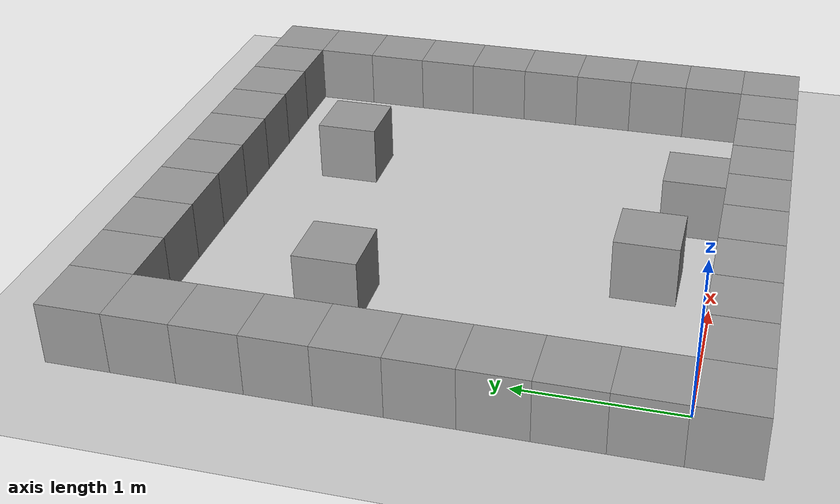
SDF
<?xml version="1.0" encoding="utf-8"?>
<sdf version="1.4">
	<world name="default">
		<include>
			<uri>model://ground_plane</uri>
		</include>
		<include>
			<uri>model://sun</uri>
		</include>
		<model name="unit_box_id_0">
			<static>true</static>
			<pose>0.6000000000000001 2.2 0.2 0 0 0</pose>
			<link name="link">
				<inertial>
					<mass>1</mass>
					<inertia>
						<ixx>0.166667</ixx>
						<ixy>0</ixy>
						<ixz>0</ixz>
						<iyy>0.166667</iyy>
						<iyz>0</iyz>
						<izz>0.166667</izz>
					</inertia>
					<pose>0.6000000000000001 2.2 0.2 0 0 0</pose>
				</inertial>
				<collision name="collision">
					<geometry>
						<box>
							<size>0.4 0.4 0.4</size>
						</box>
					</geometry>
					<max_contacts>10</max_contacts>
					<surface>
						<contact>
							<ode></ode>
						</contact>
						<bounce></bounce>
						<friction>
							<torsional>
								<ode></ode>
							</torsional>
							<ode></ode>
						</friction>
					</surface>
				</collision>
				<visual name="visual">
					<geometry>
						<box>
							<size>0.4 0.4 0.4</size>
						</box>
					</geometry>
					<material>
						<script>
							<name>Gazebo/Grey</name>
							<uri>file://media/materials/scripts/gazebo.material</uri>
						</script>
					</material>
				</visual>
				<self_collide>0</self_collide>
				<enable_wind>0</enable_wind>
				<kinematic>0</kinematic>
			</link>
		</model>
		<model name="unit_box_id_1">
			<static>true</static>
			<pose>1.2 0.4 0.2 0 0 0</pose>
			<link name="link">
				<inertial>
					<mass>1</mass>
					<inertia>
						<ixx>0.166667</ixx>
						<ixy>0</ixy>
						<ixz>0</ixz>
						<iyy>0.166667</iyy>
						<iyz>0</iyz>
						<izz>0.166667</izz>
					</inertia>
					<pose>1.2 0.4 0.2 0 0 0</pose>
				</inertial>
				<collision name="collision">
					<geometry>
						<box>
							<size>0.4 0.4 0.4</size>
						</box>
					</geometry>
					<max_contacts>10</max_contacts>
					<surface>
						<contact>
							<ode></ode>
						</contact>
						<bounce></bounce>
						<friction>
							<torsional>
								<ode></ode>
							</torsional>
							<ode></ode>
						</friction>
					</surface>
				</collision>
				<visual name="visual">
					<geometry>
						<box>
							<size>0.4 0.4 0.4</size>
						</box>
					</geometry>
					<material>
						<script>
							<name>Gazebo/Grey</name>
							<uri>file://media/materials/scripts/gazebo.material</uri>
						</script>
					</material>
				</visual>
				<self_collide>0</self_collide>
				<enable_wind>0</enable_wind>
				<kinematic>0</kinematic>
			</link>
		</model>
		<model name="unit_box_id_2">
			<static>true</static>
			<pose>2.0 0.2 0.2 0 0 0</pose>
			<link name="link">
				<inertial>
					<mass>1</mass>
					<inertia>
						<ixx>0.166667</ixx>
						<ixy>0</ixy>
						<ixz>0</ixz>
						<iyy>0.166667</iyy>
						<iyz>0</iyz>
						<izz>0.166667</izz>
					</inertia>
					<pose>2.0 0.2 0.2 0 0 0</pose>
				</inertial>
				<collision name="collision">
					<geometry>
						<box>
							<size>0.4 0.4 0.4</size>
						</box>
					</geometry>
					<max_contacts>10</max_contacts>
					<surface>
						<contact>
							<ode></ode>
						</contact>
						<bounce></bounce>
						<friction>
							<torsional>
								<ode></ode>
							</torsional>
							<ode></ode>
						</friction>
					</surface>
				</collision>
				<visual name="visual">
					<geometry>
						<box>
							<size>0.4 0.4 0.4</size>
						</box>
					</geometry>
					<material>
						<script>
							<name>Gazebo/Grey</name>
							<uri>file://media/materials/scripts/gazebo.material</uri>
						</script>
					</material>
				</visual>
				<self_collide>0</self_collide>
				<enable_wind>0</enable_wind>
				<kinematic>0</kinematic>
			</link>
		</model>
		<model name="unit_box_id_3">
			<static>true</static>
			<pose>2.2 2.6000000000000005 0.2 0 0 0</pose>
			<link name="link">
				<inertial>
					<mass>1</mass>
					<inertia>
						<ixx>0.166667</ixx>
						<ixy>0</ixy>
						<ixz>0</ixz>
						<iyy>0.166667</iyy>
						<iyz>0</iyz>
						<izz>0.166667</izz>
					</inertia>
					<pose>2.2 2.6000000000000005 0.2 0 0 0</pose>
				</inertial>
				<collision name="collision">
					<geometry>
						<box>
							<size>0.4 0.4 0.4</size>
						</box>
					</geometry>
					<max_contacts>10</max_contacts>
					<surface>
						<contact>
							<ode></ode>
						</contact>
						<bounce></bounce>
						<friction>
							<torsional>
								<ode></ode>
							</torsional>
							<ode></ode>
						</friction>
					</surface>
				</collision>
				<visual name="visual">
					<geometry>
						<box>
							<size>0.4 0.4 0.4</size>
						</box>
					</geometry>
					<material>
						<script>
							<name>Gazebo/Grey</name>
							<uri>file://media/materials/scripts/gazebo.material</uri>
						</script>
					</material>
				</visual>
				<self_collide>0</self_collide>
				<enable_wind>0</enable_wind>
				<kinematic>0</kinematic>
			</link>
		</model>
		<model name="unit_box_id_-0.4_-0.4">
			<static>true</static>
			<pose>-0.2 -0.2 0.2 0 0 0</pose>
			<link name="link">
				<inertial>
					<mass>1</mass>
					<inertia>
						<ixx>0.166667</ixx>
						<ixy>0</ixy>
						<ixz>0</ixz>
						<iyy>0.166667</iyy>
						<iyz>0</iyz>
						<izz>0.166667</izz>
					</inertia>
					<pose>-0.2 -0.2 0.2 0 0 0</pose>
				</inertial>
				<collision name="collision">
					<geometry>
						<box>
							<size>0.4 0.4 0.4</size>
						</box>
					</geometry>
					<max_contacts>10</max_contacts>
					<surface>
						<contact>
							<ode></ode>
						</contact>
						<bounce></bounce>
						<friction>
							<torsional>
								<ode></ode>
							</torsional>
							<ode></ode>
						</friction>
					</surface>
				</collision>
				<visual name="visual">
					<geometry>
						<box>
							<size>0.4 0.4 0.4</size>
						</box>
					</geometry>
					<material>
						<script>
							<name>Gazebo/Grey</name>
							<uri>file://media/materials/scripts/gazebo.material</uri>
						</script>
					</material>
				</visual>
				<self_collide>0</self_collide>
				<enable_wind>0</enable_wind>
				<kinematic>0</kinematic>
			</link>
		</model>
		<model name="unit_box_id_3.2_-0.4">
			<static>true</static>
			<pose>3.4000000000000004 -0.2 0.2 0 0 0</pose>
			<link name="link">
				<inertial>
					<mass>1</mass>
					<inertia>
						<ixx>0.166667</ixx>
						<ixy>0</ixy>
						<ixz>0</ixz>
						<iyy>0.166667</iyy>
						<iyz>0</iyz>
						<izz>0.166667</izz>
					</inertia>
					<pose>3.4000000000000004 -0.2 0.2 0 0 0</pose>
				</inertial>
				<collision name="collision">
					<geometry>
						<box>
							<size>0.4 0.4 0.4</size>
						</box>
					</geometry>
					<max_contacts>10</max_contacts>
					<surface>
						<contact>
							<ode></ode>
						</contact>
						<bounce></bounce>
						<friction>
							<torsional>
								<ode></ode>
							</torsional>
							<ode></ode>
						</friction>
					</surface>
				</collision>
				<visual name="visual">
					<geometry>
						<box>
							<size>0.4 0.4 0.4</size>
						</box>
					</geometry>
					<material>
						<script>
							<name>Gazebo/Grey</name>
							<uri>file://media/materials/scripts/gazebo.material</uri>
						</script>
					</material>
				</visual>
				<self_collide>0</self_collide>
				<enable_wind>0</enable_wind>
				<kinematic>0</kinematic>
			</link>
		</model>
		<model name="unit_box_id_-0.4_0.0">
			<static>true</static>
			<pose>-0.2 0.2 0.2 0 0 0</pose>
			<link name="link">
				<inertial>
					<mass>1</mass>
					<inertia>
						<ixx>0.166667</ixx>
						<ixy>0</ixy>
						<ixz>0</ixz>
						<iyy>0.166667</iyy>
						<iyz>0</iyz>
						<izz>0.166667</izz>
					</inertia>
					<pose>-0.2 0.2 0.2 0 0 0</pose>
				</inertial>
				<collision name="collision">
					<geometry>
						<box>
							<size>0.4 0.4 0.4</size>
						</box>
					</geometry>
					<max_contacts>10</max_contacts>
					<surface>
						<contact>
							<ode></ode>
						</contact>
						<bounce></bounce>
						<friction>
							<torsional>
								<ode></ode>
							</torsional>
							<ode></ode>
						</friction>
					</surface>
				</collision>
				<visual name="visual">
					<geometry>
						<box>
							<size>0.4 0.4 0.4</size>
						</box>
					</geometry>
					<material>
						<script>
							<name>Gazebo/Grey</name>
							<uri>file://media/materials/scripts/gazebo.material</uri>
						</script>
					</material>
				</visual>
				<self_collide>0</self_collide>
				<enable_wind>0</enable_wind>
				<kinematic>0</kinematic>
			</link>
		</model>
		<model name="unit_box_id_3.2_0.0">
			<static>true</static>
			<pose>3.4000000000000004 0.2 0.2 0 0 0</pose>
			<link name="link">
				<inertial>
					<mass>1</mass>
					<inertia>
						<ixx>0.166667</ixx>
						<ixy>0</ixy>
						<ixz>0</ixz>
						<iyy>0.166667</iyy>
						<iyz>0</iyz>
						<izz>0.166667</izz>
					</inertia>
					<pose>3.4000000000000004 0.2 0.2 0 0 0</pose>
				</inertial>
				<collision name="collision">
					<geometry>
						<box>
							<size>0.4 0.4 0.4</size>
						</box>
					</geometry>
					<max_contacts>10</max_contacts>
					<surface>
						<contact>
							<ode></ode>
						</contact>
						<bounce></bounce>
						<friction>
							<torsional>
								<ode></ode>
							</torsional>
							<ode></ode>
						</friction>
					</surface>
				</collision>
				<visual name="visual">
					<geometry>
						<box>
							<size>0.4 0.4 0.4</size>
						</box>
					</geometry>
					<material>
						<script>
							<name>Gazebo/Grey</name>
							<uri>file://media/materials/scripts/gazebo.material</uri>
						</script>
					</material>
				</visual>
				<self_collide>0</self_collide>
				<enable_wind>0</enable_wind>
				<kinematic>0</kinematic>
			</link>
		</model>
		<model name="unit_box_id_-0.4_0.4">
			<static>true</static>
			<pose>-0.2 0.6000000000000001 0.2 0 0 0</pose>
			<link name="link">
				<inertial>
					<mass>1</mass>
					<inertia>
						<ixx>0.166667</ixx>
						<ixy>0</ixy>
						<ixz>0</ixz>
						<iyy>0.166667</iyy>
						<iyz>0</iyz>
						<izz>0.166667</izz>
					</inertia>
					<pose>-0.2 0.6000000000000001 0.2 0 0 0</pose>
				</inertial>
				<collision name="collision">
					<geometry>
						<box>
							<size>0.4 0.4 0.4</size>
						</box>
					</geometry>
					<max_contacts>10</max_contacts>
					<surface>
						<contact>
							<ode></ode>
						</contact>
						<bounce></bounce>
						<friction>
							<torsional>
								<ode></ode>
							</torsional>
							<ode></ode>
						</friction>
					</surface>
				</collision>
				<visual name="visual">
					<geometry>
						<box>
							<size>0.4 0.4 0.4</size>
						</box>
					</geometry>
					<material>
						<script>
							<name>Gazebo/Grey</name>
							<uri>file://media/materials/scripts/gazebo.material</uri>
						</script>
					</material>
				</visual>
				<self_collide>0</self_collide>
				<enable_wind>0</enable_wind>
				<kinematic>0</kinematic>
			</link>
		</model>
		<model name="unit_box_id_3.2_0.4">
			<static>true</static>
			<pose>3.4000000000000004 0.6000000000000001 0.2 0 0 0</pose>
			<link name="link">
				<inertial>
					<mass>1</mass>
					<inertia>
						<ixx>0.166667</ixx>
						<ixy>0</ixy>
						<ixz>0</ixz>
						<iyy>0.166667</iyy>
						<iyz>0</iyz>
						<izz>0.166667</izz>
					</inertia>
					<pose>3.4000000000000004 0.6000000000000001 0.2 0 0 0</pose>
				</inertial>
				<collision name="collision">
					<geometry>
						<box>
							<size>0.4 0.4 0.4</size>
						</box>
					</geometry>
					<max_contacts>10</max_contacts>
					<surface>
						<contact>
							<ode></ode>
						</contact>
						<bounce></bounce>
						<friction>
							<torsional>
								<ode></ode>
							</torsional>
							<ode></ode>
						</friction>
					</surface>
				</collision>
				<visual name="visual">
					<geometry>
						<box>
							<size>0.4 0.4 0.4</size>
						</box>
					</geometry>
					<material>
						<script>
							<name>Gazebo/Grey</name>
							<uri>file://media/materials/scripts/gazebo.material</uri>
						</script>
					</material>
				</visual>
				<self_collide>0</self_collide>
				<enable_wind>0</enable_wind>
				<kinematic>0</kinematic>
			</link>
		</model>
		<model name="unit_box_id_-0.4_0.8">
			<static>true</static>
			<pose>-0.2 1.0 0.2 0 0 0</pose>
			<link name="link">
				<inertial>
					<mass>1</mass>
					<inertia>
						<ixx>0.166667</ixx>
						<ixy>0</ixy>
						<ixz>0</ixz>
						<iyy>0.166667</iyy>
						<iyz>0</iyz>
						<izz>0.166667</izz>
					</inertia>
					<pose>-0.2 1.0 0.2 0 0 0</pose>
				</inertial>
				<collision name="collision">
					<geometry>
						<box>
							<size>0.4 0.4 0.4</size>
						</box>
					</geometry>
					<max_contacts>10</max_contacts>
					<surface>
						<contact>
							<ode></ode>
						</contact>
						<bounce></bounce>
						<friction>
							<torsional>
								<ode></ode>
							</torsional>
							<ode></ode>
						</friction>
					</surface>
				</collision>
				<visual name="visual">
					<geometry>
						<box>
							<size>0.4 0.4 0.4</size>
						</box>
					</geometry>
					<material>
						<script>
							<name>Gazebo/Grey</name>
							<uri>file://media/materials/scripts/gazebo.material</uri>
						</script>
					</material>
				</visual>
				<self_collide>0</self_collide>
				<enable_wind>0</enable_wind>
				<kinematic>0</kinematic>
			</link>
		</model>
		<model name="unit_box_id_3.2_0.8">
			<static>true</static>
			<pose>3.4000000000000004 1.0 0.2 0 0 0</pose>
			<link name="link">
				<inertial>
					<mass>1</mass>
					<inertia>
						<ixx>0.166667</ixx>
						<ixy>0</ixy>
						<ixz>0</ixz>
						<iyy>0.166667</iyy>
						<iyz>0</iyz>
						<izz>0.166667</izz>
					</inertia>
					<pose>3.4000000000000004 1.0 0.2 0 0 0</pose>
				</inertial>
				<collision name="collision">
					<geometry>
						<box>
							<size>0.4 0.4 0.4</size>
						</box>
					</geometry>
					<max_contacts>10</max_contacts>
					<surface>
						<contact>
							<ode></ode>
						</contact>
						<bounce></bounce>
						<friction>
							<torsional>
								<ode></ode>
							</torsional>
							<ode></ode>
						</friction>
					</surface>
				</collision>
				<visual name="visual">
					<geometry>
						<box>
							<size>0.4 0.4 0.4</size>
						</box>
					</geometry>
					<material>
						<script>
							<name>Gazebo/Grey</name>
							<uri>file://media/materials/scripts/gazebo.material</uri>
						</script>
					</material>
				</visual>
				<self_collide>0</self_collide>
				<enable_wind>0</enable_wind>
				<kinematic>0</kinematic>
			</link>
		</model>
		<model name="unit_box_id_-0.4_1.2000000000000002">
			<static>true</static>
			<pose>-0.2 1.4000000000000001 0.2 0 0 0</pose>
			<link name="link">
				<inertial>
					<mass>1</mass>
					<inertia>
						<ixx>0.166667</ixx>
						<ixy>0</ixy>
						<ixz>0</ixz>
						<iyy>0.166667</iyy>
						<iyz>0</iyz>
						<izz>0.166667</izz>
					</inertia>
					<pose>-0.2 1.4000000000000001 0.2 0 0 0</pose>
				</inertial>
				<collision name="collision">
					<geometry>
						<box>
							<size>0.4 0.4 0.4</size>
						</box>
					</geometry>
					<max_contacts>10</max_contacts>
					<surface>
						<contact>
							<ode></ode>
						</contact>
						<bounce></bounce>
						<friction>
							<torsional>
								<ode></ode>
							</torsional>
							<ode></ode>
						</friction>
					</surface>
				</collision>
				<visual name="visual">
					<geometry>
						<box>
							<size>0.4 0.4 0.4</size>
						</box>
					</geometry>
					<material>
						<script>
							<name>Gazebo/Grey</name>
							<uri>file://media/materials/scripts/gazebo.material</uri>
						</script>
					</material>
				</visual>
				<self_collide>0</self_collide>
				<enable_wind>0</enable_wind>
				<kinematic>0</kinematic>
			</link>
		</model>
		<model name="unit_box_id_3.2_1.2000000000000002">
			<static>true</static>
			<pose>3.4000000000000004 1.4000000000000001 0.2 0 0 0</pose>
			<link name="link">
				<inertial>
					<mass>1</mass>
					<inertia>
						<ixx>0.166667</ixx>
						<ixy>0</ixy>
						<ixz>0</ixz>
						<iyy>0.166667</iyy>
						<iyz>0</iyz>
						<izz>0.166667</izz>
					</inertia>
					<pose>3.4000000000000004 1.4000000000000001 0.2 0 0 0</pose>
				</inertial>
				<collision name="collision">
					<geometry>
						<box>
							<size>0.4 0.4 0.4</size>
						</box>
					</geometry>
					<max_contacts>10</max_contacts>
					<surface>
						<contact>
							<ode></ode>
						</contact>
						<bounce></bounce>
						<friction>
							<torsional>
								<ode></ode>
							</torsional>
							<ode></ode>
						</friction>
					</surface>
				</collision>
				<visual name="visual">
					<geometry>
						<box>
							<size>0.4 0.4 0.4</size>
						</box>
					</geometry>
					<material>
						<script>
							<name>Gazebo/Grey</name>
							<uri>file://media/materials/scripts/gazebo.material</uri>
						</script>
					</material>
				</visual>
				<self_collide>0</self_collide>
				<enable_wind>0</enable_wind>
				<kinematic>0</kinematic>
			</link>
		</model>
		<model name="unit_box_id_-0.4_1.6">
			<static>true</static>
			<pose>-0.2 1.8 0.2 0 0 0</pose>
			<link name="link">
				<inertial>
					<mass>1</mass>
					<inertia>
						<ixx>0.166667</ixx>
						<ixy>0</ixy>
						<ixz>0</ixz>
						<iyy>0.166667</iyy>
						<iyz>0</iyz>
						<izz>0.166667</izz>
					</inertia>
					<pose>-0.2 1.8 0.2 0 0 0</pose>
				</inertial>
				<collision name="collision">
					<geometry>
						<box>
							<size>0.4 0.4 0.4</size>
						</box>
					</geometry>
					<max_contacts>10</max_contacts>
					<surface>
						<contact>
							<ode></ode>
						</contact>
						<bounce></bounce>
						<friction>
							<torsional>
								<ode></ode>
							</torsional>
							<ode></ode>
						</friction>
					</surface>
				</collision>
				<visual name="visual">
					<geometry>
						<box>
							<size>0.4 0.4 0.4</size>
						</box>
					</geometry>
					<material>
						<script>
							<name>Gazebo/Grey</name>
							<uri>file://media/materials/scripts/gazebo.material</uri>
						</script>
					</material>
				</visual>
				<self_collide>0</self_collide>
				<enable_wind>0</enable_wind>
				<kinematic>0</kinematic>
			</link>
		</model>
		<model name="unit_box_id_3.2_1.6">
			<static>true</static>
			<pose>3.4000000000000004 1.8 0.2 0 0 0</pose>
			<link name="link">
				<inertial>
					<mass>1</mass>
					<inertia>
						<ixx>0.166667</ixx>
						<ixy>0</ixy>
						<ixz>0</ixz>
						<iyy>0.166667</iyy>
						<iyz>0</iyz>
						<izz>0.166667</izz>
					</inertia>
					<pose>3.4000000000000004 1.8 0.2 0 0 0</pose>
				</inertial>
				<collision name="collision">
					<geometry>
						<box>
							<size>0.4 0.4 0.4</size>
						</box>
					</geometry>
					<max_contacts>10</max_contacts>
					<surface>
						<contact>
							<ode></ode>
						</contact>
						<bounce></bounce>
						<friction>
							<torsional>
								<ode></ode>
							</torsional>
							<ode></ode>
						</friction>
					</surface>
				</collision>
				<visual name="visual">
					<geometry>
						<box>
							<size>0.4 0.4 0.4</size>
						</box>
					</geometry>
					<material>
						<script>
							<name>Gazebo/Grey</name>
							<uri>file://media/materials/scripts/gazebo.material</uri>
						</script>
					</material>
				</visual>
				<self_collide>0</self_collide>
				<enable_wind>0</enable_wind>
				<kinematic>0</kinematic>
			</link>
		</model>
		<model name="unit_box_id_-0.4_2.0">
			<static>true</static>
			<pose>-0.2 2.2 0.2 0 0 0</pose>
			<link name="link">
				<inertial>
					<mass>1</mass>
					<inertia>
						<ixx>0.166667</ixx>
						<ixy>0</ixy>
						<ixz>0</ixz>
						<iyy>0.166667</iyy>
						<iyz>0</iyz>
						<izz>0.166667</izz>
					</inertia>
					<pose>-0.2 2.2 0.2 0 0 0</pose>
				</inertial>
				<collision name="collision">
					<geometry>
						<box>
							<size>0.4 0.4 0.4</size>
						</box>
					</geometry>
					<max_contacts>10</max_contacts>
					<surface>
						<contact>
							<ode></ode>
						</contact>
						<bounce></bounce>
						<friction>
							<torsional>
								<ode></ode>
							</torsional>
							<ode></ode>
						</friction>
					</surface>
				</collision>
				<visual name="visual">
					<geometry>
						<box>
							<size>0.4 0.4 0.4</size>
						</box>
					</geometry>
					<material>
						<script>
							<name>Gazebo/Grey</name>
							<uri>file://media/materials/scripts/gazebo.material</uri>
						</script>
					</material>
				</visual>
				<self_collide>0</self_collide>
				<enable_wind>0</enable_wind>
				<kinematic>0</kinematic>
			</link>
		</model>
		<model name="unit_box_id_3.2_2.0">
			<static>true</static>
			<pose>3.4000000000000004 2.2 0.2 0 0 0</pose>
			<link name="link">
				<inertial>
					<mass>1</mass>
					<inertia>
						<ixx>0.166667</ixx>
						<ixy>0</ixy>
						<ixz>0</ixz>
						<iyy>0.166667</iyy>
						<iyz>0</iyz>
						<izz>0.166667</izz>
					</inertia>
					<pose>3.4000000000000004 2.2 0.2 0 0 0</pose>
				</inertial>
				<collision name="collision">
					<geometry>
						<box>
							<size>0.4 0.4 0.4</size>
						</box>
					</geometry>
					<max_contacts>10</max_contacts>
					<surface>
						<contact>
							<ode></ode>
						</contact>
						<bounce></bounce>
						<friction>
							<torsional>
								<ode></ode>
							</torsional>
							<ode></ode>
						</friction>
					</surface>
				</collision>
				<visual name="visual">
					<geometry>
						<box>
							<size>0.4 0.4 0.4</size>
						</box>
					</geometry>
					<material>
						<script>
							<name>Gazebo/Grey</name>
							<uri>file://media/materials/scripts/gazebo.material</uri>
						</script>
					</material>
				</visual>
				<self_collide>0</self_collide>
				<enable_wind>0</enable_wind>
				<kinematic>0</kinematic>
			</link>
		</model>
		<model name="unit_box_id_-0.4_2.4000000000000004">
			<static>true</static>
			<pose>-0.2 2.6000000000000005 0.2 0 0 0</pose>
			<link name="link">
				<inertial>
					<mass>1</mass>
					<inertia>
						<ixx>0.166667</ixx>
						<ixy>0</ixy>
						<ixz>0</ixz>
						<iyy>0.166667</iyy>
						<iyz>0</iyz>
						<izz>0.166667</izz>
					</inertia>
					<pose>-0.2 2.6000000000000005 0.2 0 0 0</pose>
				</inertial>
				<collision name="collision">
					<geometry>
						<box>
							<size>0.4 0.4 0.4</size>
						</box>
					</geometry>
					<max_contacts>10</max_contacts>
					<surface>
						<contact>
							<ode></ode>
						</contact>
						<bounce></bounce>
						<friction>
							<torsional>
								<ode></ode>
							</torsional>
							<ode></ode>
						</friction>
					</surface>
				</collision>
				<visual name="visual">
					<geometry>
						<box>
							<size>0.4 0.4 0.4</size>
						</box>
					</geometry>
					<material>
						<script>
							<name>Gazebo/Grey</name>
							<uri>file://media/materials/scripts/gazebo.material</uri>
						</script>
					</material>
				</visual>
				<self_collide>0</self_collide>
				<enable_wind>0</enable_wind>
				<kinematic>0</kinematic>
			</link>
		</model>
		<model name="unit_box_id_3.2_2.4000000000000004">
			<static>true</static>
			<pose>3.4000000000000004 2.6000000000000005 0.2 0 0 0</pose>
			<link name="link">
				<inertial>
					<mass>1</mass>
					<inertia>
						<ixx>0.166667</ixx>
						<ixy>0</ixy>
						<ixz>0</ixz>
						<iyy>0.166667</iyy>
						<iyz>0</iyz>
						<izz>0.166667</izz>
					</inertia>
					<pose>3.4000000000000004 2.6000000000000005 0.2 0 0 0</pose>
				</inertial>
				<collision name="collision">
					<geometry>
						<box>
							<size>0.4 0.4 0.4</size>
						</box>
					</geometry>
					<max_contacts>10</max_contacts>
					<surface>
						<contact>
							<ode></ode>
						</contact>
						<bounce></bounce>
						<friction>
							<torsional>
								<ode></ode>
							</torsional>
							<ode></ode>
						</friction>
					</surface>
				</collision>
				<visual name="visual">
					<geometry>
						<box>
							<size>0.4 0.4 0.4</size>
						</box>
					</geometry>
					<material>
						<script>
							<name>Gazebo/Grey</name>
							<uri>file://media/materials/scripts/gazebo.material</uri>
						</script>
					</material>
				</visual>
				<self_collide>0</self_collide>
				<enable_wind>0</enable_wind>
				<kinematic>0</kinematic>
			</link>
		</model>
		<model name="unit_box_id_-0.4_2.8000000000000003">
			<static>true</static>
			<pose>-0.2 3.0000000000000004 0.2 0 0 0</pose>
			<link name="link">
				<inertial>
					<mass>1</mass>
					<inertia>
						<ixx>0.166667</ixx>
						<ixy>0</ixy>
						<ixz>0</ixz>
						<iyy>0.166667</iyy>
						<iyz>0</iyz>
						<izz>0.166667</izz>
					</inertia>
					<pose>-0.2 3.0000000000000004 0.2 0 0 0</pose>
				</inertial>
				<collision name="collision">
					<geometry>
						<box>
							<size>0.4 0.4 0.4</size>
						</box>
					</geometry>
					<max_contacts>10</max_contacts>
					<surface>
						<contact>
							<ode></ode>
						</contact>
						<bounce></bounce>
						<friction>
							<torsional>
								<ode></ode>
							</torsional>
							<ode></ode>
						</friction>
					</surface>
				</collision>
				<visual name="visual">
					<geometry>
						<box>
							<size>0.4 0.4 0.4</size>
						</box>
					</geometry>
					<material>
						<script>
							<name>Gazebo/Grey</name>
							<uri>file://media/materials/scripts/gazebo.material</uri>
						</script>
					</material>
				</visual>
				<self_collide>0</self_collide>
				<enable_wind>0</enable_wind>
				<kinematic>0</kinematic>
			</link>
		</model>
		<model name="unit_box_id_3.2_2.8000000000000003">
			<static>true</static>
			<pose>3.4000000000000004 3.0000000000000004 0.2 0 0 0</pose>
			<link name="link">
				<inertial>
					<mass>1</mass>
					<inertia>
						<ixx>0.166667</ixx>
						<ixy>0</ixy>
						<ixz>0</ixz>
						<iyy>0.166667</iyy>
						<iyz>0</iyz>
						<izz>0.166667</izz>
					</inertia>
					<pose>3.4000000000000004 3.0000000000000004 0.2 0 0 0</pose>
				</inertial>
				<collision name="collision">
					<geometry>
						<box>
							<size>0.4 0.4 0.4</size>
						</box>
					</geometry>
					<max_contacts>10</max_contacts>
					<surface>
						<contact>
							<ode></ode>
						</contact>
						<bounce></bounce>
						<friction>
							<torsional>
								<ode></ode>
							</torsional>
							<ode></ode>
						</friction>
					</surface>
				</collision>
				<visual name="visual">
					<geometry>
						<box>
							<size>0.4 0.4 0.4</size>
						</box>
					</geometry>
					<material>
						<script>
							<name>Gazebo/Grey</name>
							<uri>file://media/materials/scripts/gazebo.material</uri>
						</script>
					</material>
				</visual>
				<self_collide>0</self_collide>
				<enable_wind>0</enable_wind>
				<kinematic>0</kinematic>
			</link>
		</model>
		<model name="unit_box_id_-0.4_3.2">
			<static>true</static>
			<pose>-0.2 3.4000000000000004 0.2 0 0 0</pose>
			<link name="link">
				<inertial>
					<mass>1</mass>
					<inertia>
						<ixx>0.166667</ixx>
						<ixy>0</ixy>
						<ixz>0</ixz>
						<iyy>0.166667</iyy>
						<iyz>0</iyz>
						<izz>0.166667</izz>
					</inertia>
					<pose>-0.2 3.4000000000000004 0.2 0 0 0</pose>
				</inertial>
				<collision name="collision">
					<geometry>
						<box>
							<size>0.4 0.4 0.4</size>
						</box>
					</geometry>
					<max_contacts>10</max_contacts>
					<surface>
						<contact>
							<ode></ode>
						</contact>
						<bounce></bounce>
						<friction>
							<torsional>
								<ode></ode>
							</torsional>
							<ode></ode>
						</friction>
					</surface>
				</collision>
				<visual name="visual">
					<geometry>
						<box>
							<size>0.4 0.4 0.4</size>
						</box>
					</geometry>
					<material>
						<script>
							<name>Gazebo/Grey</name>
							<uri>file://media/materials/scripts/gazebo.material</uri>
						</script>
					</material>
				</visual>
				<self_collide>0</self_collide>
				<enable_wind>0</enable_wind>
				<kinematic>0</kinematic>
			</link>
		</model>
		<model name="unit_box_id_3.2_3.2">
			<static>true</static>
			<pose>3.4000000000000004 3.4000000000000004 0.2 0 0 0</pose>
			<link name="link">
				<inertial>
					<mass>1</mass>
					<inertia>
						<ixx>0.166667</ixx>
						<ixy>0</ixy>
						<ixz>0</ixz>
						<iyy>0.166667</iyy>
						<iyz>0</iyz>
						<izz>0.166667</izz>
					</inertia>
					<pose>3.4000000000000004 3.4000000000000004 0.2 0 0 0</pose>
				</inertial>
				<collision name="collision">
					<geometry>
						<box>
							<size>0.4 0.4 0.4</size>
						</box>
					</geometry>
					<max_contacts>10</max_contacts>
					<surface>
						<contact>
							<ode></ode>
						</contact>
						<bounce></bounce>
						<friction>
							<torsional>
								<ode></ode>
							</torsional>
							<ode></ode>
						</friction>
					</surface>
				</collision>
				<visual name="visual">
					<geometry>
						<box>
							<size>0.4 0.4 0.4</size>
						</box>
					</geometry>
					<material>
						<script>
							<name>Gazebo/Grey</name>
							<uri>file://media/materials/scripts/gazebo.material</uri>
						</script>
					</material>
				</visual>
				<self_collide>0</self_collide>
				<enable_wind>0</enable_wind>
				<kinematic>0</kinematic>
			</link>
		</model>
		<model name="unit_box_id_-0.4_-0.4">
			<static>true</static>
			<pose>-0.2 -0.2 0.2 0 0 0</pose>
			<link name="link">
				<inertial>
					<mass>1</mass>
					<inertia>
						<ixx>0.166667</ixx>
						<ixy>0</ixy>
						<ixz>0</ixz>
						<iyy>0.166667</iyy>
						<iyz>0</iyz>
						<izz>0.166667</izz>
					</inertia>
					<pose>-0.2 -0.2 0.2 0 0 0</pose>
				</inertial>
				<collision name="collision">
					<geometry>
						<box>
							<size>0.4 0.4 0.4</size>
						</box>
					</geometry>
					<max_contacts>10</max_contacts>
					<surface>
						<contact>
							<ode></ode>
						</contact>
						<bounce></bounce>
						<friction>
							<torsional>
								<ode></ode>
							</torsional>
							<ode></ode>
						</friction>
					</surface>
				</collision>
				<visual name="visual">
					<geometry>
						<box>
							<size>0.4 0.4 0.4</size>
						</box>
					</geometry>
					<material>
						<script>
							<name>Gazebo/Grey</name>
							<uri>file://media/materials/scripts/gazebo.material</uri>
						</script>
					</material>
				</visual>
				<self_collide>0</self_collide>
				<enable_wind>0</enable_wind>
				<kinematic>0</kinematic>
			</link>
		</model>
		<model name="unit_box_id_-0.4_3.2">
			<static>true</static>
			<pose>-0.2 3.4000000000000004 0.2 0 0 0</pose>
			<link name="link">
				<inertial>
					<mass>1</mass>
					<inertia>
						<ixx>0.166667</ixx>
						<ixy>0</ixy>
						<ixz>0</ixz>
						<iyy>0.166667</iyy>
						<iyz>0</iyz>
						<izz>0.166667</izz>
					</inertia>
					<pose>-0.2 3.4000000000000004 0.2 0 0 0</pose>
				</inertial>
				<collision name="collision">
					<geometry>
						<box>
							<size>0.4 0.4 0.4</size>
						</box>
					</geometry>
					<max_contacts>10</max_contacts>
					<surface>
						<contact>
							<ode></ode>
						</contact>
						<bounce></bounce>
						<friction>
							<torsional>
								<ode></ode>
							</torsional>
							<ode></ode>
						</friction>
					</surface>
				</collision>
				<visual name="visual">
					<geometry>
						<box>
							<size>0.4 0.4 0.4</size>
						</box>
					</geometry>
					<material>
						<script>
							<name>Gazebo/Grey</name>
							<uri>file://media/materials/scripts/gazebo.material</uri>
						</script>
					</material>
				</visual>
				<self_collide>0</self_collide>
				<enable_wind>0</enable_wind>
				<kinematic>0</kinematic>
			</link>
		</model>
		<model name="unit_box_id_0.0_-0.4">
			<static>true</static>
			<pose>0.2 -0.2 0.2 0 0 0</pose>
			<link name="link">
				<inertial>
					<mass>1</mass>
					<inertia>
						<ixx>0.166667</ixx>
						<ixy>0</ixy>
						<ixz>0</ixz>
						<iyy>0.166667</iyy>
						<iyz>0</iyz>
						<izz>0.166667</izz>
					</inertia>
					<pose>0.2 -0.2 0.2 0 0 0</pose>
				</inertial>
				<collision name="collision">
					<geometry>
						<box>
							<size>0.4 0.4 0.4</size>
						</box>
					</geometry>
					<max_contacts>10</max_contacts>
					<surface>
						<contact>
							<ode></ode>
						</contact>
						<bounce></bounce>
						<friction>
							<torsional>
								<ode></ode>
							</torsional>
							<ode></ode>
						</friction>
					</surface>
				</collision>
				<visual name="visual">
					<geometry>
						<box>
							<size>0.4 0.4 0.4</size>
						</box>
					</geometry>
					<material>
						<script>
							<name>Gazebo/Grey</name>
							<uri>file://media/materials/scripts/gazebo.material</uri>
						</script>
					</material>
				</visual>
				<self_collide>0</self_collide>
				<enable_wind>0</enable_wind>
				<kinematic>0</kinematic>
			</link>
		</model>
		<model name="unit_box_id_0.0_3.2">
			<static>true</static>
			<pose>0.2 3.4000000000000004 0.2 0 0 0</pose>
			<link name="link">
				<inertial>
					<mass>1</mass>
					<inertia>
						<ixx>0.166667</ixx>
						<ixy>0</ixy>
						<ixz>0</ixz>
						<iyy>0.166667</iyy>
						<iyz>0</iyz>
						<izz>0.166667</izz>
					</inertia>
					<pose>0.2 3.4000000000000004 0.2 0 0 0</pose>
				</inertial>
				<collision name="collision">
					<geometry>
						<box>
							<size>0.4 0.4 0.4</size>
						</box>
					</geometry>
					<max_contacts>10</max_contacts>
					<surface>
						<contact>
							<ode></ode>
						</contact>
						<bounce></bounce>
						<friction>
							<torsional>
								<ode></ode>
							</torsional>
							<ode></ode>
						</friction>
					</surface>
				</collision>
				<visual name="visual">
					<geometry>
						<box>
							<size>0.4 0.4 0.4</size>
						</box>
					</geometry>
					<material>
						<script>
							<name>Gazebo/Grey</name>
							<uri>file://media/materials/scripts/gazebo.material</uri>
						</script>
					</material>
				</visual>
				<self_collide>0</self_collide>
				<enable_wind>0</enable_wind>
				<kinematic>0</kinematic>
			</link>
		</model>
		<model name="unit_box_id_0.4_-0.4">
			<static>true</static>
			<pose>0.6000000000000001 -0.2 0.2 0 0 0</pose>
			<link name="link">
				<inertial>
					<mass>1</mass>
					<inertia>
						<ixx>0.166667</ixx>
						<ixy>0</ixy>
						<ixz>0</ixz>
						<iyy>0.166667</iyy>
						<iyz>0</iyz>
						<izz>0.166667</izz>
					</inertia>
					<pose>0.6000000000000001 -0.2 0.2 0 0 0</pose>
				</inertial>
				<collision name="collision">
					<geometry>
						<box>
							<size>0.4 0.4 0.4</size>
						</box>
					</geometry>
					<max_contacts>10</max_contacts>
					<surface>
						<contact>
							<ode></ode>
						</contact>
						<bounce></bounce>
						<friction>
							<torsional>
								<ode></ode>
							</torsional>
							<ode></ode>
						</friction>
					</surface>
				</collision>
				<visual name="visual">
					<geometry>
						<box>
							<size>0.4 0.4 0.4</size>
						</box>
					</geometry>
					<material>
						<script>
							<name>Gazebo/Grey</name>
							<uri>file://media/materials/scripts/gazebo.material</uri>
						</script>
					</material>
				</visual>
				<self_collide>0</self_collide>
				<enable_wind>0</enable_wind>
				<kinematic>0</kinematic>
			</link>
		</model>
		<model name="unit_box_id_0.4_3.2">
			<static>true</static>
			<pose>0.6000000000000001 3.4000000000000004 0.2 0 0 0</pose>
			<link name="link">
				<inertial>
					<mass>1</mass>
					<inertia>
						<ixx>0.166667</ixx>
						<ixy>0</ixy>
						<ixz>0</ixz>
						<iyy>0.166667</iyy>
						<iyz>0</iyz>
						<izz>0.166667</izz>
					</inertia>
					<pose>0.6000000000000001 3.4000000000000004 0.2 0 0 0</pose>
				</inertial>
				<collision name="collision">
					<geometry>
						<box>
							<size>0.4 0.4 0.4</size>
						</box>
					</geometry>
					<max_contacts>10</max_contacts>
					<surface>
						<contact>
							<ode></ode>
						</contact>
						<bounce></bounce>
						<friction>
							<torsional>
								<ode></ode>
							</torsional>
							<ode></ode>
						</friction>
					</surface>
				</collision>
				<visual name="visual">
					<geometry>
						<box>
							<size>0.4 0.4 0.4</size>
						</box>
					</geometry>
					<material>
						<script>
							<name>Gazebo/Grey</name>
							<uri>file://media/materials/scripts/gazebo.material</uri>
						</script>
					</material>
				</visual>
				<self_collide>0</self_collide>
				<enable_wind>0</enable_wind>
				<kinematic>0</kinematic>
			</link>
		</model>
		<model name="unit_box_id_0.8_-0.4">
			<static>true</static>
			<pose>1.0 -0.2 0.2 0 0 0</pose>
			<link name="link">
				<inertial>
					<mass>1</mass>
					<inertia>
						<ixx>0.166667</ixx>
						<ixy>0</ixy>
						<ixz>0</ixz>
						<iyy>0.166667</iyy>
						<iyz>0</iyz>
						<izz>0.166667</izz>
					</inertia>
					<pose>1.0 -0.2 0.2 0 0 0</pose>
				</inertial>
				<collision name="collision">
					<geometry>
						<box>
							<size>0.4 0.4 0.4</size>
						</box>
					</geometry>
					<max_contacts>10</max_contacts>
					<surface>
						<contact>
							<ode></ode>
						</contact>
						<bounce></bounce>
						<friction>
							<torsional>
								<ode></ode>
							</torsional>
							<ode></ode>
						</friction>
					</surface>
				</collision>
				<visual name="visual">
					<geometry>
						<box>
							<size>0.4 0.4 0.4</size>
						</box>
					</geometry>
					<material>
						<script>
							<name>Gazebo/Grey</name>
							<uri>file://media/materials/scripts/gazebo.material</uri>
						</script>
					</material>
				</visual>
				<self_collide>0</self_collide>
				<enable_wind>0</enable_wind>
				<kinematic>0</kinematic>
			</link>
		</model>
		<model name="unit_box_id_0.8_3.2">
			<static>true</static>
			<pose>1.0 3.4000000000000004 0.2 0 0 0</pose>
			<link name="link">
				<inertial>
					<mass>1</mass>
					<inertia>
						<ixx>0.166667</ixx>
						<ixy>0</ixy>
						<ixz>0</ixz>
						<iyy>0.166667</iyy>
						<iyz>0</iyz>
						<izz>0.166667</izz>
					</inertia>
					<pose>1.0 3.4000000000000004 0.2 0 0 0</pose>
				</inertial>
				<collision name="collision">
					<geometry>
						<box>
							<size>0.4 0.4 0.4</size>
						</box>
					</geometry>
					<max_contacts>10</max_contacts>
					<surface>
						<contact>
							<ode></ode>
						</contact>
						<bounce></bounce>
						<friction>
							<torsional>
								<ode></ode>
							</torsional>
							<ode></ode>
						</friction>
					</surface>
				</collision>
				<visual name="visual">
					<geometry>
						<box>
							<size>0.4 0.4 0.4</size>
						</box>
					</geometry>
					<material>
						<script>
							<name>Gazebo/Grey</name>
							<uri>file://media/materials/scripts/gazebo.material</uri>
						</script>
					</material>
				</visual>
				<self_collide>0</self_collide>
				<enable_wind>0</enable_wind>
				<kinematic>0</kinematic>
			</link>
		</model>
		<model name="unit_box_id_1.2000000000000002_-0.4">
			<static>true</static>
			<pose>1.4000000000000001 -0.2 0.2 0 0 0</pose>
			<link name="link">
				<inertial>
					<mass>1</mass>
					<inertia>
						<ixx>0.166667</ixx>
						<ixy>0</ixy>
						<ixz>0</ixz>
						<iyy>0.166667</iyy>
						<iyz>0</iyz>
						<izz>0.166667</izz>
					</inertia>
					<pose>1.4000000000000001 -0.2 0.2 0 0 0</pose>
				</inertial>
				<collision name="collision">
					<geometry>
						<box>
							<size>0.4 0.4 0.4</size>
						</box>
					</geometry>
					<max_contacts>10</max_contacts>
					<surface>
						<contact>
							<ode></ode>
						</contact>
						<bounce></bounce>
						<friction>
							<torsional>
								<ode></ode>
							</torsional>
							<ode></ode>
						</friction>
					</surface>
				</collision>
				<visual name="visual">
					<geometry>
						<box>
							<size>0.4 0.4 0.4</size>
						</box>
					</geometry>
					<material>
						<script>
							<name>Gazebo/Grey</name>
							<uri>file://media/materials/scripts/gazebo.material</uri>
						</script>
					</material>
				</visual>
				<self_collide>0</self_collide>
				<enable_wind>0</enable_wind>
				<kinematic>0</kinematic>
			</link>
		</model>
		<model name="unit_box_id_1.2000000000000002_3.2">
			<static>true</static>
			<pose>1.4000000000000001 3.4000000000000004 0.2 0 0 0</pose>
			<link name="link">
				<inertial>
					<mass>1</mass>
					<inertia>
						<ixx>0.166667</ixx>
						<ixy>0</ixy>
						<ixz>0</ixz>
						<iyy>0.166667</iyy>
						<iyz>0</iyz>
						<izz>0.166667</izz>
					</inertia>
					<pose>1.4000000000000001 3.4000000000000004 0.2 0 0 0</pose>
				</inertial>
				<collision name="collision">
					<geometry>
						<box>
							<size>0.4 0.4 0.4</size>
						</box>
					</geometry>
					<max_contacts>10</max_contacts>
					<surface>
						<contact>
							<ode></ode>
						</contact>
						<bounce></bounce>
						<friction>
							<torsional>
								<ode></ode>
							</torsional>
							<ode></ode>
						</friction>
					</surface>
				</collision>
				<visual name="visual">
					<geometry>
						<box>
							<size>0.4 0.4 0.4</size>
						</box>
					</geometry>
					<material>
						<script>
							<name>Gazebo/Grey</name>
							<uri>file://media/materials/scripts/gazebo.material</uri>
						</script>
					</material>
				</visual>
				<self_collide>0</self_collide>
				<enable_wind>0</enable_wind>
				<kinematic>0</kinematic>
			</link>
		</model>
		<model name="unit_box_id_1.6_-0.4">
			<static>true</static>
			<pose>1.8 -0.2 0.2 0 0 0</pose>
			<link name="link">
				<inertial>
					<mass>1</mass>
					<inertia>
						<ixx>0.166667</ixx>
						<ixy>0</ixy>
						<ixz>0</ixz>
						<iyy>0.166667</iyy>
						<iyz>0</iyz>
						<izz>0.166667</izz>
					</inertia>
					<pose>1.8 -0.2 0.2 0 0 0</pose>
				</inertial>
				<collision name="collision">
					<geometry>
						<box>
							<size>0.4 0.4 0.4</size>
						</box>
					</geometry>
					<max_contacts>10</max_contacts>
					<surface>
						<contact>
							<ode></ode>
						</contact>
						<bounce></bounce>
						<friction>
							<torsional>
								<ode></ode>
							</torsional>
							<ode></ode>
						</friction>
					</surface>
				</collision>
				<visual name="visual">
					<geometry>
						<box>
							<size>0.4 0.4 0.4</size>
						</box>
					</geometry>
					<material>
						<script>
							<name>Gazebo/Grey</name>
							<uri>file://media/materials/scripts/gazebo.material</uri>
						</script>
					</material>
				</visual>
				<self_collide>0</self_collide>
				<enable_wind>0</enable_wind>
				<kinematic>0</kinematic>
			</link>
		</model>
		<model name="unit_box_id_1.6_3.2">
			<static>true</static>
			<pose>1.8 3.4000000000000004 0.2 0 0 0</pose>
			<link name="link">
				<inertial>
					<mass>1</mass>
					<inertia>
						<ixx>0.166667</ixx>
						<ixy>0</ixy>
						<ixz>0</ixz>
						<iyy>0.166667</iyy>
						<iyz>0</iyz>
						<izz>0.166667</izz>
					</inertia>
					<pose>1.8 3.4000000000000004 0.2 0 0 0</pose>
				</inertial>
				<collision name="collision">
					<geometry>
						<box>
							<size>0.4 0.4 0.4</size>
						</box>
					</geometry>
					<max_contacts>10</max_contacts>
					<surface>
						<contact>
							<ode></ode>
						</contact>
						<bounce></bounce>
						<friction>
							<torsional>
								<ode></ode>
							</torsional>
							<ode></ode>
						</friction>
					</surface>
				</collision>
				<visual name="visual">
					<geometry>
						<box>
							<size>0.4 0.4 0.4</size>
						</box>
					</geometry>
					<material>
						<script>
							<name>Gazebo/Grey</name>
							<uri>file://media/materials/scripts/gazebo.material</uri>
						</script>
					</material>
				</visual>
				<self_collide>0</self_collide>
				<enable_wind>0</enable_wind>
				<kinematic>0</kinematic>
			</link>
		</model>
		<model name="unit_box_id_2.0_-0.4">
			<static>true</static>
			<pose>2.2 -0.2 0.2 0 0 0</pose>
			<link name="link">
				<inertial>
					<mass>1</mass>
					<inertia>
						<ixx>0.166667</ixx>
						<ixy>0</ixy>
						<ixz>0</ixz>
						<iyy>0.166667</iyy>
						<iyz>0</iyz>
						<izz>0.166667</izz>
					</inertia>
					<pose>2.2 -0.2 0.2 0 0 0</pose>
				</inertial>
				<collision name="collision">
					<geometry>
						<box>
							<size>0.4 0.4 0.4</size>
						</box>
					</geometry>
					<max_contacts>10</max_contacts>
					<surface>
						<contact>
							<ode></ode>
						</contact>
						<bounce></bounce>
						<friction>
							<torsional>
								<ode></ode>
							</torsional>
							<ode></ode>
						</friction>
					</surface>
				</collision>
				<visual name="visual">
					<geometry>
						<box>
							<size>0.4 0.4 0.4</size>
						</box>
					</geometry>
					<material>
						<script>
							<name>Gazebo/Grey</name>
							<uri>file://media/materials/scripts/gazebo.material</uri>
						</script>
					</material>
				</visual>
				<self_collide>0</self_collide>
				<enable_wind>0</enable_wind>
				<kinematic>0</kinematic>
			</link>
		</model>
		<model name="unit_box_id_2.0_3.2">
			<static>true</static>
			<pose>2.2 3.4000000000000004 0.2 0 0 0</pose>
			<link name="link">
				<inertial>
					<mass>1</mass>
					<inertia>
						<ixx>0.166667</ixx>
						<ixy>0</ixy>
						<ixz>0</ixz>
						<iyy>0.166667</iyy>
						<iyz>0</iyz>
						<izz>0.166667</izz>
					</inertia>
					<pose>2.2 3.4000000000000004 0.2 0 0 0</pose>
				</inertial>
				<collision name="collision">
					<geometry>
						<box>
							<size>0.4 0.4 0.4</size>
						</box>
					</geometry>
					<max_contacts>10</max_contacts>
					<surface>
						<contact>
							<ode></ode>
						</contact>
						<bounce></bounce>
						<friction>
							<torsional>
								<ode></ode>
							</torsional>
							<ode></ode>
						</friction>
					</surface>
				</collision>
				<visual name="visual">
					<geometry>
						<box>
							<size>0.4 0.4 0.4</size>
						</box>
					</geometry>
					<material>
						<script>
							<name>Gazebo/Grey</name>
							<uri>file://media/materials/scripts/gazebo.material</uri>
						</script>
					</material>
				</visual>
				<self_collide>0</self_collide>
				<enable_wind>0</enable_wind>
				<kinematic>0</kinematic>
			</link>
		</model>
		<model name="unit_box_id_2.4000000000000004_-0.4">
			<static>true</static>
			<pose>2.6000000000000005 -0.2 0.2 0 0 0</pose>
			<link name="link">
				<inertial>
					<mass>1</mass>
					<inertia>
						<ixx>0.166667</ixx>
						<ixy>0</ixy>
						<ixz>0</ixz>
						<iyy>0.166667</iyy>
						<iyz>0</iyz>
						<izz>0.166667</izz>
					</inertia>
					<pose>2.6000000000000005 -0.2 0.2 0 0 0</pose>
				</inertial>
				<collision name="collision">
					<geometry>
						<box>
							<size>0.4 0.4 0.4</size>
						</box>
					</geometry>
					<max_contacts>10</max_contacts>
					<surface>
						<contact>
							<ode></ode>
						</contact>
						<bounce></bounce>
						<friction>
							<torsional>
								<ode></ode>
							</torsional>
							<ode></ode>
						</friction>
					</surface>
				</collision>
				<visual name="visual">
					<geometry>
						<box>
							<size>0.4 0.4 0.4</size>
						</box>
					</geometry>
					<material>
						<script>
							<name>Gazebo/Grey</name>
							<uri>file://media/materials/scripts/gazebo.material</uri>
						</script>
					</material>
				</visual>
				<self_collide>0</self_collide>
				<enable_wind>0</enable_wind>
				<kinematic>0</kinematic>
			</link>
		</model>
		<model name="unit_box_id_2.4000000000000004_3.2">
			<static>true</static>
			<pose>2.6000000000000005 3.4000000000000004 0.2 0 0 0</pose>
			<link name="link">
				<inertial>
					<mass>1</mass>
					<inertia>
						<ixx>0.166667</ixx>
						<ixy>0</ixy>
						<ixz>0</ixz>
						<iyy>0.166667</iyy>
						<iyz>0</iyz>
						<izz>0.166667</izz>
					</inertia>
					<pose>2.6000000000000005 3.4000000000000004 0.2 0 0 0</pose>
				</inertial>
				<collision name="collision">
					<geometry>
						<box>
							<size>0.4 0.4 0.4</size>
						</box>
					</geometry>
					<max_contacts>10</max_contacts>
					<surface>
						<contact>
							<ode></ode>
						</contact>
						<bounce></bounce>
						<friction>
							<torsional>
								<ode></ode>
							</torsional>
							<ode></ode>
						</friction>
					</surface>
				</collision>
				<visual name="visual">
					<geometry>
						<box>
							<size>0.4 0.4 0.4</size>
						</box>
					</geometry>
					<material>
						<script>
							<name>Gazebo/Grey</name>
							<uri>file://media/materials/scripts/gazebo.material</uri>
						</script>
					</material>
				</visual>
				<self_collide>0</self_collide>
				<enable_wind>0</enable_wind>
				<kinematic>0</kinematic>
			</link>
		</model>
		<model name="unit_box_id_2.8000000000000003_-0.4">
			<static>true</static>
			<pose>3.0000000000000004 -0.2 0.2 0 0 0</pose>
			<link name="link">
				<inertial>
					<mass>1</mass>
					<inertia>
						<ixx>0.166667</ixx>
						<ixy>0</ixy>
						<ixz>0</ixz>
						<iyy>0.166667</iyy>
						<iyz>0</iyz>
						<izz>0.166667</izz>
					</inertia>
					<pose>3.0000000000000004 -0.2 0.2 0 0 0</pose>
				</inertial>
				<collision name="collision">
					<geometry>
						<box>
							<size>0.4 0.4 0.4</size>
						</box>
					</geometry>
					<max_contacts>10</max_contacts>
					<surface>
						<contact>
							<ode></ode>
						</contact>
						<bounce></bounce>
						<friction>
							<torsional>
								<ode></ode>
							</torsional>
							<ode></ode>
						</friction>
					</surface>
				</collision>
				<visual name="visual">
					<geometry>
						<box>
							<size>0.4 0.4 0.4</size>
						</box>
					</geometry>
					<material>
						<script>
							<name>Gazebo/Grey</name>
							<uri>file://media/materials/scripts/gazebo.material</uri>
						</script>
					</material>
				</visual>
				<self_collide>0</self_collide>
				<enable_wind>0</enable_wind>
				<kinematic>0</kinematic>
			</link>
		</model>
		<model name="unit_box_id_2.8000000000000003_3.2">
			<static>true</static>
			<pose>3.0000000000000004 3.4000000000000004 0.2 0 0 0</pose>
			<link name="link">
				<inertial>
					<mass>1</mass>
					<inertia>
						<ixx>0.166667</ixx>
						<ixy>0</ixy>
						<ixz>0</ixz>
						<iyy>0.166667</iyy>
						<iyz>0</iyz>
						<izz>0.166667</izz>
					</inertia>
					<pose>3.0000000000000004 3.4000000000000004 0.2 0 0 0</pose>
				</inertial>
				<collision name="collision">
					<geometry>
						<box>
							<size>0.4 0.4 0.4</size>
						</box>
					</geometry>
					<max_contacts>10</max_contacts>
					<surface>
						<contact>
							<ode></ode>
						</contact>
						<bounce></bounce>
						<friction>
							<torsional>
								<ode></ode>
							</torsional>
							<ode></ode>
						</friction>
					</surface>
				</collision>
				<visual name="visual">
					<geometry>
						<box>
							<size>0.4 0.4 0.4</size>
						</box>
					</geometry>
					<material>
						<script>
							<name>Gazebo/Grey</name>
							<uri>file://media/materials/scripts/gazebo.material</uri>
						</script>
					</material>
				</visual>
				<self_collide>0</self_collide>
				<enable_wind>0</enable_wind>
				<kinematic>0</kinematic>
			</link>
		</model>
		<model name="unit_box_id_3.2_-0.4">
			<static>true</static>
			<pose>3.4000000000000004 -0.2 0.2 0 0 0</pose>
			<link name="link">
				<inertial>
					<mass>1</mass>
					<inertia>
						<ixx>0.166667</ixx>
						<ixy>0</ixy>
						<ixz>0</ixz>
						<iyy>0.166667</iyy>
						<iyz>0</iyz>
						<izz>0.166667</izz>
					</inertia>
					<pose>3.4000000000000004 -0.2 0.2 0 0 0</pose>
				</inertial>
				<collision name="collision">
					<geometry>
						<box>
							<size>0.4 0.4 0.4</size>
						</box>
					</geometry>
					<max_contacts>10</max_contacts>
					<surface>
						<contact>
							<ode></ode>
						</contact>
						<bounce></bounce>
						<friction>
							<torsional>
								<ode></ode>
							</torsional>
							<ode></ode>
						</friction>
					</surface>
				</collision>
				<visual name="visual">
					<geometry>
						<box>
							<size>0.4 0.4 0.4</size>
						</box>
					</geometry>
					<material>
						<script>
							<name>Gazebo/Grey</name>
							<uri>file://media/materials/scripts/gazebo.material</uri>
						</script>
					</material>
				</visual>
				<self_collide>0</self_collide>
				<enable_wind>0</enable_wind>
				<kinematic>0</kinematic>
			</link>
		</model>
		<model name="unit_box_id_3.2_3.2">
			<static>true</static>
			<pose>3.4000000000000004 3.4000000000000004 0.2 0 0 0</pose>
			<link name="link">
				<inertial>
					<mass>1</mass>
					<inertia>
						<ixx>0.166667</ixx>
						<ixy>0</ixy>
						<ixz>0</ixz>
						<iyy>0.166667</iyy>
						<iyz>0</iyz>
						<izz>0.166667</izz>
					</inertia>
					<pose>3.4000000000000004 3.4000000000000004 0.2 0 0 0</pose>
				</inertial>
				<collision name="collision">
					<geometry>
						<box>
							<size>0.4 0.4 0.4</size>
						</box>
					</geometry>
					<max_contacts>10</max_contacts>
					<surface>
						<contact>
							<ode></ode>
						</contact>
						<bounce></bounce>
						<friction>
							<torsional>
								<ode></ode>
							</torsional>
							<ode></ode>
						</friction>
					</surface>
				</collision>
				<visual name="visual">
					<geometry>
						<box>
							<size>0.4 0.4 0.4</size>
						</box>
					</geometry>
					<material>
						<script>
							<name>Gazebo/Grey</name>
							<uri>file://media/materials/scripts/gazebo.material</uri>
						</script>
					</material>
				</visual>
				<self_collide>0</self_collide>
				<enable_wind>0</enable_wind>
				<kinematic>0</kinematic>
			</link>
		</model>
	</world>
</sdf>
